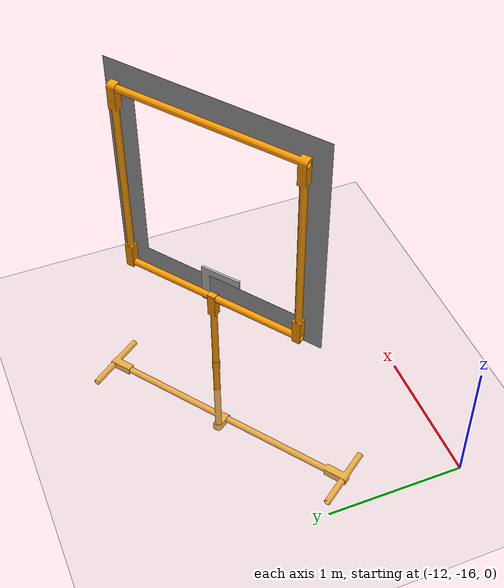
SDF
<sdf version="1.7">
 <world name="default">
  <model name="ground_plane">
   <static>1</static>
   <link name="link">
    <collision name="collision">
     <geometry><plane><normal>0 0 1</normal><size>100 100</size></plane></geometry>
     <surface>
      <contact><collide_bitmask>65535</collide_bitmask></contact>
      <friction><ode><mu>100</mu><mu2>50</mu2></ode></friction>
     </surface>
    </collision>
    <visual name="visual">
     <cast_shadows>0</cast_shadows>
     <geometry><plane><normal>0 0 1</normal><size>100 100</size></plane></geometry>
     <material>
      <script><uri>file://media/materials/scripts/gazebo.material</uri><name>Gazebo/Grey</name></script>
     </material>
    </visual>
   </link>
  </model>
  <model name="Aruco_gate_4">
   <link name="aruco">
    <pose>0.135 0 1.45017 0 -0 1.6</pose>
    <collision name="collision"><geometry><box><size>0.3 0.015 0.3</size></box></geometry></collision>
    <visual name="visual">
     <pose>0 0 0 0 1.57 0</pose>
     <geometry><box><size>0.3 0.015 0.3</size></box></geometry>
     <material>
      <script>
       <uri>model://aruco/materials/scripts</uri>
       <uri>model://aruco/materials/textures</uri>
       <name>aruco_4/Diffuse</name>
      </script>
     </material>
    </visual>
   </link>
   <link name="link_0">
    <pose>-0.126667 1.11221 0.000173 1.57 -0 0</pose>
    <inertial>
     <mass>1</mass>
     <inertia>
      <ixx>0.166667</ixx>
      <ixy>0</ixy>
      <ixz>0</ixz>
      <iyy>0.166667</iyy>
      <iyz>0</iyz>
      <izz>0.166667</izz>
     </inertia>
    </inertial>
    <visual name="visual">
     <geometry><mesh><uri>model://aruco_gate_1/meshes/base.stl</uri><scale>1 1 1</scale></mesh></geometry>
     <material>
      <lighting>1</lighting>
      <script><uri>file://media/materials/scripts/gazebo.material</uri><name>Gazebo/Grey</name></script>
      <ambient>1 0.6 0 1</ambient>
      <diffuse>1 0.6 0 1</diffuse>
      <specular>0.01 0.01 0.01 1</specular>
      <emissive>0 0 0 1</emissive>
      <shader type="vertex"><normal_map>__default__</normal_map></shader>
     </material>
    </visual>
    <collision name="collision">
     <geometry><mesh><uri>model://aruco_gate_1/meshes/base.stl</uri></mesh></geometry>
     <surface>
      <friction>
       <ode><mu>1</mu><mu2>1</mu2><fdir1>0 0 0</fdir1><slip1>0</slip1><slip2>0</slip2></ode>
       <torsional>
        <coefficient>1</coefficient>
        <patch_radius>0</patch_radius>
        <surface_radius>0</surface_radius>
        <use_patch_radius>1</use_patch_radius>
        <ode><slip>0</slip></ode>
       </torsional>
      </friction>
      <bounce><restitution_coefficient>0</restitution_coefficient><threshold>1e+06</threshold></bounce>
      <contact>
       <collide_without_contact>0</collide_without_contact>
       <collide_without_contact_bitmask>1</collide_without_contact_bitmask>
       <collide_bitmask>1</collide_bitmask>
       <ode>
        <soft_cfm>0</soft_cfm>
        <soft_erp>0.2</soft_erp>
        <kp>1e+13</kp>
        <kd>1</kd>
        <max_vel>0.01</max_vel>
        <min_depth>0</min_depth>
       </ode>
       <bullet>
        <split_impulse>1</split_impulse>
        <split_impulse_penetration_threshold>-0.01</split_impulse_penetration_threshold>
        <soft_cfm>0</soft_cfm>
        <soft_erp>0.2</soft_erp>
        <kp>1e+13</kp>
        <kd>1</kd>
       </bullet>
      </contact>
     </surface>
    </collision>
   </link>
   <link name="link_1">
    <pose>0.003333 -0.7 1.40017 0 -0 0</pose>
    <inertial>
     <mass>1</mass>
     <inertia>
      <ixx>0.166667</ixx>
      <ixy>0</ixy>
      <ixz>0</ixz>
      <iyy>0.166667</iyy>
      <iyz>0</iyz>
      <izz>0.166667</izz>
     </inertia>
    </inertial>
    <visual name="visual">
     <geometry><mesh><uri>model://aruco_gate_1/meshes/hoop.stl</uri><scale>1 1 1</scale></mesh></geometry>
     <material>
      <lighting>1</lighting>
      <script><uri>file://media/materials/scripts/gazebo.material</uri><name>Gazebo/Grey</name></script>
      <ambient>1 0.6 0 1</ambient>
      <diffuse>1 0.6 0 1</diffuse>
      <specular>0.01 0.01 0.01 1</specular>
      <emissive>0 0 0 1</emissive>
      <shader type="vertex"><normal_map>__default__</normal_map></shader>
     </material>
    </visual>
    <collision name="collision">
     <geometry><mesh><uri>model://aruco_gate_1/meshes/hoop.stl</uri></mesh></geometry>
     <surface>
      <friction>
       <ode><mu>1</mu><mu2>1</mu2><fdir1>0 0 0</fdir1><slip1>0</slip1><slip2>0</slip2></ode>
       <torsional>
        <coefficient>1</coefficient>
        <patch_radius>0</patch_radius>
        <surface_radius>0</surface_radius>
        <use_patch_radius>1</use_patch_radius>
        <ode><slip>0</slip></ode>
       </torsional>
      </friction>
      <bounce><restitution_coefficient>0</restitution_coefficient><threshold>1e+06</threshold></bounce>
      <contact>
       <collide_without_contact>0</collide_without_contact>
       <collide_without_contact_bitmask>1</collide_without_contact_bitmask>
       <collide_bitmask>1</collide_bitmask>
       <ode>
        <soft_cfm>0</soft_cfm>
        <soft_erp>0.2</soft_erp>
        <kp>1e+13</kp>
        <kd>1</kd>
        <max_vel>0.01</max_vel>
        <min_depth>0</min_depth>
       </ode>
       <bullet>
        <split_impulse>1</split_impulse>
        <split_impulse_penetration_threshold>-0.01</split_impulse_penetration_threshold>
        <soft_cfm>0</soft_cfm>
        <soft_erp>0.2</soft_erp>
        <kp>1e+13</kp>
        <kd>1</kd>
       </bullet>
      </contact>
     </surface>
    </collision>
   </link>
   <link name="link_2">
    <pose>0.123333 -0.797794 3.62017 0 1.57 0</pose>
    <inertial>
     <mass>1</mass>
     <inertia>
      <ixx>0.166667</ixx>
      <ixy>0</ixy>
      <ixz>0</ixz>
      <iyy>0.166667</iyy>
      <iyz>0</iyz>
      <izz>0.166667</izz>
     </inertia>
    </inertial>
    <visual name="visual">
     <geometry><mesh><uri>model://aruco_gate_1/meshes/background.stl</uri><scale>1 1 1</scale></mesh></geometry>
     <material>
      <lighting>1</lighting>
      <script><uri>file://media/materials/scripts/gazebo.material</uri><name>Gazebo/Grey</name></script>
      <ambient>0.9 0.9 0.9 1</ambient>
      <diffuse>0.9 0.9 0.9 1</diffuse>
      <specular>0.01 0.01 0.01 1</specular>
      <emissive>0 0 0 1</emissive>
      <shader type="vertex"><normal_map>__default__</normal_map></shader>
     </material>
    </visual>
    <collision name="collision">
     <geometry><mesh><uri>model://aruco_gate_1/meshes/background.stl</uri></mesh></geometry>
     <surface>
      <friction>
       <ode><mu>1</mu><mu2>1</mu2><fdir1>0 0 0</fdir1><slip1>0</slip1><slip2>0</slip2></ode>
       <torsional>
        <coefficient>1</coefficient>
        <patch_radius>0</patch_radius>
        <surface_radius>0</surface_radius>
        <use_patch_radius>1</use_patch_radius>
        <ode><slip>0</slip></ode>
       </torsional>
      </friction>
      <bounce><restitution_coefficient>0</restitution_coefficient><threshold>1e+06</threshold></bounce>
      <contact>
       <collide_without_contact>0</collide_without_contact>
       <collide_without_contact_bitmask>1</collide_without_contact_bitmask>
       <collide_bitmask>1</collide_bitmask>
       <ode>
        <soft_cfm>0</soft_cfm>
        <soft_erp>0.2</soft_erp>
        <kp>1e+13</kp>
        <kd>1</kd>
        <max_vel>0.01</max_vel>
        <min_depth>0</min_depth>
       </ode>
       <bullet>
        <split_impulse>1</split_impulse>
        <split_impulse_penetration_threshold>-0.01</split_impulse_penetration_threshold>
        <soft_cfm>0</soft_cfm>
        <soft_erp>0.2</soft_erp>
        <kp>1e+13</kp>
        <kd>1</kd>
       </bullet>
      </contact>
     </surface>
    </collision>
   </link>
   <static>1</static>
   <plugin name="gazebo_random_position_plugin" filename="librotors_gazebo_random_position_plugin.so">
    <limitX>0.75</limitX>
    <limitY>0.75</limitY>
    <limitZ>0.5</limitZ>
    <activate_roll>0</activate_roll>
   </plugin>
   <pose>-10.7157 -14.6589 -0.493427 0 0 -0.94968</pose>
  </model>
 </world>
</sdf>
